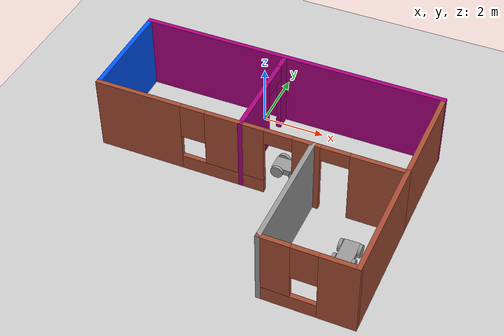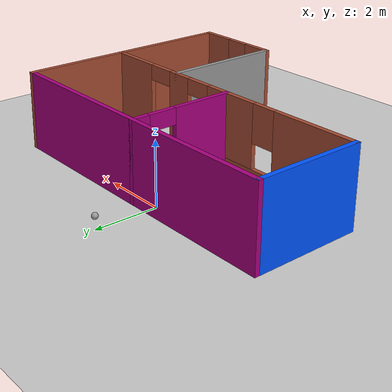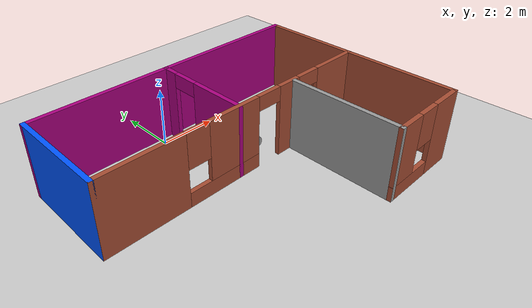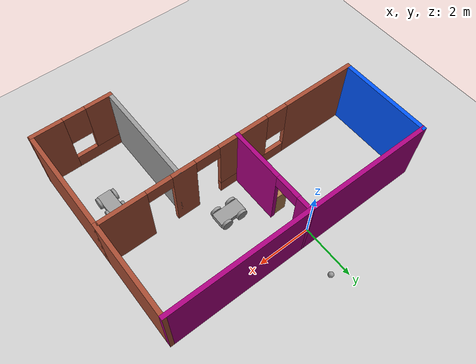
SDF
<sdf version="1.6">
 <world name="default">
  <plugin name="welcome" filename="libwelcome.so"/>
  <light name="sun" type="directional">
   <pose>0 0 10 0 -0 0</pose>
   <diffuse>0.8 0.8 0.8 1</diffuse>
   <specular>0.2 0.2 0.2 1</specular>
   <attenuation>
    <range>1000</range>
    <constant>0.9</constant>
    <linear>0.01</linear>
    <quadratic>0.001</quadratic>
   </attenuation>
   <direction>-0.5 0.1 -0.9</direction>
  </light>
  <model name="ground_plane">
   <static>1</static>
   <link name="link">
    <collision name="collision">
     <geometry><plane><normal>0 0 1</normal><size>100 100</size></plane></geometry>
     <surface><friction><ode><mu>100</mu><mu2>50</mu2></ode></friction></surface>
    </collision>
    <visual name="visual">
     <cast_shadows>0</cast_shadows>
     <geometry><plane><normal>0 0 1</normal><size>100 100</size></plane></geometry>
     <material>
      <script><uri>file://media/materials/scripts/gazebo.material</uri><name>Gazebo/Grey</name></script>
     </material>
    </visual>
   </link>
  </model>
  <gravity>0 0 -9.8</gravity>
  <magnetic_field>6e-06 2.3e-05 -4.2e-05</magnetic_field>
  <atmosphere type="adiabatic"/>
  <physics name="default_physics" default="0" type="ode">
   <max_step_size>0.001</max_step_size>
   <real_time_factor>1</real_time_factor>
   <real_time_update_rate>1000</real_time_update_rate>
  </physics>
  <scene><ambient>0.4 0.4 0.4 1</ambient><background>0.7 0.7 0.7 1</background><shadows>1</shadows></scene>
  <spherical_coordinates>
   <surface_model>EARTH_WGS84</surface_model>
   <latitude_deg>0</latitude_deg>
   <longitude_deg>0</longitude_deg>
   <elevation>0</elevation>
   <heading_deg>0</heading_deg>
  </spherical_coordinates>
  <model name="prj1_robo">
   <link name="link_0">
    <pose>0 0 1e-06 0 -0 0</pose>
    <inertial>
     <mass>1</mass>
     <inertia>
      <ixx>0.166667</ixx>
      <ixy>0</ixy>
      <ixz>0</ixz>
      <iyy>0.166667</iyy>
      <iyz>0</iyz>
      <izz>0.166667</izz>
     </inertia>
    </inertial>
    <visual name="visual">
     <geometry><box><size>1 0.5 0.2</size></box></geometry>
     <material>
      <lighting>1</lighting>
      <script><uri>file://media/materials/scripts/gazebo.material</uri><name>Gazebo/Grey</name></script>
      <shader type="pixel"><normal_map>__default__</normal_map></shader>
      <ambient>0.3 0.3 0.3 1</ambient>
      <diffuse>0.7 0.7 0.7 1</diffuse>
      <specular>0.01 0.01 0.01 1</specular>
      <emissive>0 0 0 1</emissive>
     </material>
    </visual>
    <collision name="collision">
     <geometry><box><size>1 0.5 0.2</size></box></geometry>
     <surface>
      <friction>
       <ode><mu>1</mu><mu2>1</mu2><fdir1>0 0 0</fdir1><slip1>0</slip1><slip2>0</slip2></ode>
       <torsional>
        <coefficient>1</coefficient>
        <patch_radius>0</patch_radius>
        <surface_radius>0</surface_radius>
        <use_patch_radius>1</use_patch_radius>
        <ode><slip>0</slip></ode>
       </torsional>
      </friction>
      <bounce><restitution_coefficient>0</restitution_coefficient><threshold>1e+06</threshold></bounce>
      <contact>
       <collide_without_contact>0</collide_without_contact>
       <collide_without_contact_bitmask>1</collide_without_contact_bitmask>
       <collide_bitmask>1</collide_bitmask>
       <ode>
        <soft_cfm>0</soft_cfm>
        <soft_erp>0.2</soft_erp>
        <kp>1e+13</kp>
        <kd>1</kd>
        <max_vel>0.01</max_vel>
        <min_depth>0</min_depth>
       </ode>
       <bullet>
        <split_impulse>1</split_impulse>
        <split_impulse_penetration_threshold>-0.01</split_impulse_penetration_threshold>
        <soft_cfm>0</soft_cfm>
        <soft_erp>0.2</soft_erp>
        <kp>1e+13</kp>
        <kd>1</kd>
       </bullet>
      </contact>
     </surface>
    </collision>
   </link>
   <link name="link_1">
    <pose>0.3 -0.300019 -4e-06 1.5707 -0 0</pose>
    <inertial>
     <mass>13.009</mass>
     <inertia><ixx>1.96472</ixx><ixy>0</ixy><ixz>0</ixz><iyy>1.96472</iyy><iyz>0</iyz><izz>0.26018</izz></inertia>
    </inertial>
    <visual name="visual">
     <geometry><cylinder><radius>0.2</radius><length>0.1</length></cylinder></geometry>
     <material>
      <lighting>1</lighting>
      <script><uri>file://media/materials/scripts/gazebo.material</uri><name>Gazebo/Grey</name></script>
      <shader type="pixel"><normal_map>__default__</normal_map></shader>
      <ambient>0.3 0.3 0.3 1</ambient>
      <diffuse>0.7 0.7 0.7 1</diffuse>
      <specular>0.01 0.01 0.01 1</specular>
      <emissive>0 0 0 1</emissive>
     </material>
    </visual>
    <collision name="collision">
     <geometry><cylinder><radius>0.2</radius><length>0.1</length></cylinder></geometry>
     <surface>
      <friction>
       <ode><mu>1</mu><mu2>1</mu2><fdir1>0 0 0</fdir1><slip1>0</slip1><slip2>0</slip2></ode>
       <torsional>
        <coefficient>1</coefficient>
        <patch_radius>0</patch_radius>
        <surface_radius>0</surface_radius>
        <use_patch_radius>1</use_patch_radius>
        <ode><slip>0</slip></ode>
       </torsional>
      </friction>
      <bounce><restitution_coefficient>0</restitution_coefficient><threshold>1e+06</threshold></bounce>
      <contact>
       <collide_without_contact>0</collide_without_contact>
       <collide_without_contact_bitmask>1</collide_without_contact_bitmask>
       <collide_bitmask>1</collide_bitmask>
       <ode>
        <soft_cfm>0</soft_cfm>
        <soft_erp>0.2</soft_erp>
        <kp>1e+13</kp>
        <kd>1</kd>
        <max_vel>0.01</max_vel>
        <min_depth>0</min_depth>
       </ode>
       <bullet>
        <split_impulse>1</split_impulse>
        <split_impulse_penetration_threshold>-0.01</split_impulse_penetration_threshold>
        <soft_cfm>0</soft_cfm>
        <soft_erp>0.2</soft_erp>
        <kp>1e+13</kp>
        <kd>1</kd>
       </bullet>
      </contact>
     </surface>
    </collision>
   </link>
   <link name="link_1_clone">
    <pose>-0.3 -0.300019 1e-06 1.5707 -0 0</pose>
    <inertial>
     <mass>13.009</mass>
     <inertia><ixx>1.96472</ixx><ixy>0</ixy><ixz>0</ixz><iyy>1.96472</iyy><iyz>0</iyz><izz>0.26018</izz></inertia>
    </inertial>
    <visual name="visual">
     <geometry><cylinder><radius>0.2</radius><length>0.1</length></cylinder></geometry>
     <material>
      <lighting>1</lighting>
      <script><uri>file://media/materials/scripts/gazebo.material</uri><name>Gazebo/Grey</name></script>
      <shader type="pixel"><normal_map>__default__</normal_map></shader>
      <ambient>0.3 0.3 0.3 1</ambient>
      <diffuse>0.7 0.7 0.7 1</diffuse>
      <specular>0.01 0.01 0.01 1</specular>
      <emissive>0 0 0 1</emissive>
     </material>
    </visual>
    <collision name="collision">
     <geometry><cylinder><radius>0.2</radius><length>0.1</length></cylinder></geometry>
     <surface>
      <friction>
       <ode><mu>1</mu><mu2>1</mu2><fdir1>0 0 0</fdir1><slip1>0</slip1><slip2>0</slip2></ode>
       <torsional>
        <coefficient>1</coefficient>
        <patch_radius>0</patch_radius>
        <surface_radius>0</surface_radius>
        <use_patch_radius>1</use_patch_radius>
        <ode><slip>0</slip></ode>
       </torsional>
      </friction>
      <bounce><restitution_coefficient>0</restitution_coefficient><threshold>1e+06</threshold></bounce>
      <contact>
       <collide_without_contact>0</collide_without_contact>
       <collide_without_contact_bitmask>1</collide_without_contact_bitmask>
       <collide_bitmask>1</collide_bitmask>
       <ode>
        <soft_cfm>0</soft_cfm>
        <soft_erp>0.2</soft_erp>
        <kp>1e+13</kp>
        <kd>1</kd>
        <max_vel>0.01</max_vel>
        <min_depth>0</min_depth>
       </ode>
       <bullet>
        <split_impulse>1</split_impulse>
        <split_impulse_penetration_threshold>-0.01</split_impulse_penetration_threshold>
        <soft_cfm>0</soft_cfm>
        <soft_erp>0.2</soft_erp>
        <kp>1e+13</kp>
        <kd>1</kd>
       </bullet>
      </contact>
     </surface>
    </collision>
   </link>
   <link name="link_1_clone_0">
    <pose>-0.3 0.300019 1e-06 1.5707 -0 0</pose>
    <inertial>
     <mass>13.009</mass>
     <inertia><ixx>1.96472</ixx><ixy>0</ixy><ixz>0</ixz><iyy>1.96472</iyy><iyz>0</iyz><izz>0.26018</izz></inertia>
    </inertial>
    <visual name="visual">
     <geometry><cylinder><radius>0.2</radius><length>0.1</length></cylinder></geometry>
     <material>
      <lighting>1</lighting>
      <script><uri>file://media/materials/scripts/gazebo.material</uri><name>Gazebo/Grey</name></script>
      <shader type="pixel"><normal_map>__default__</normal_map></shader>
      <ambient>0.3 0.3 0.3 1</ambient>
      <diffuse>0.7 0.7 0.7 1</diffuse>
      <specular>0.01 0.01 0.01 1</specular>
      <emissive>0 0 0 1</emissive>
     </material>
    </visual>
    <collision name="collision">
     <geometry><cylinder><radius>0.2</radius><length>0.1</length></cylinder></geometry>
     <surface>
      <friction>
       <ode><mu>1</mu><mu2>1</mu2><fdir1>0 0 0</fdir1><slip1>0</slip1><slip2>0</slip2></ode>
       <torsional>
        <coefficient>1</coefficient>
        <patch_radius>0</patch_radius>
        <surface_radius>0</surface_radius>
        <use_patch_radius>1</use_patch_radius>
        <ode><slip>0</slip></ode>
       </torsional>
      </friction>
      <bounce><restitution_coefficient>0</restitution_coefficient><threshold>1e+06</threshold></bounce>
      <contact>
       <collide_without_contact>0</collide_without_contact>
       <collide_without_contact_bitmask>1</collide_without_contact_bitmask>
       <collide_bitmask>1</collide_bitmask>
       <ode>
        <soft_cfm>0</soft_cfm>
        <soft_erp>0.2</soft_erp>
        <kp>1e+13</kp>
        <kd>1</kd>
        <max_vel>0.01</max_vel>
        <min_depth>0</min_depth>
       </ode>
       <bullet>
        <split_impulse>1</split_impulse>
        <split_impulse_penetration_threshold>-0.01</split_impulse_penetration_threshold>
        <soft_cfm>0</soft_cfm>
        <soft_erp>0.2</soft_erp>
        <kp>1e+13</kp>
        <kd>1</kd>
       </bullet>
      </contact>
     </surface>
    </collision>
   </link>
   <link name="link_1_clone_1">
    <pose>0.3 0.300019 1e-06 1.5707 -0 0</pose>
    <inertial>
     <mass>13.009</mass>
     <inertia><ixx>1.96472</ixx><ixy>0</ixy><ixz>0</ixz><iyy>1.96472</iyy><iyz>0</iyz><izz>0.26018</izz></inertia>
    </inertial>
    <visual name="visual">
     <geometry><cylinder><radius>0.2</radius><length>0.1</length></cylinder></geometry>
     <material>
      <lighting>1</lighting>
      <script><uri>file://media/materials/scripts/gazebo.material</uri><name>Gazebo/Grey</name></script>
      <shader type="pixel"><normal_map>__default__</normal_map></shader>
      <ambient>0.3 0.3 0.3 1</ambient>
      <diffuse>0.7 0.7 0.7 1</diffuse>
      <specular>0.01 0.01 0.01 1</specular>
      <emissive>0 0 0 1</emissive>
     </material>
    </visual>
    <collision name="collision">
     <geometry><cylinder><radius>0.2</radius><length>0.1</length></cylinder></geometry>
     <surface>
      <friction>
       <ode><mu>1</mu><mu2>1</mu2><fdir1>0 0 0</fdir1><slip1>0</slip1><slip2>0</slip2></ode>
       <torsional>
        <coefficient>1</coefficient>
        <patch_radius>0</patch_radius>
        <surface_radius>0</surface_radius>
        <use_patch_radius>1</use_patch_radius>
        <ode><slip>0</slip></ode>
       </torsional>
      </friction>
      <bounce><restitution_coefficient>0</restitution_coefficient><threshold>1e+06</threshold></bounce>
      <contact>
       <collide_without_contact>0</collide_without_contact>
       <collide_without_contact_bitmask>1</collide_without_contact_bitmask>
       <collide_bitmask>1</collide_bitmask>
       <ode>
        <soft_cfm>0</soft_cfm>
        <soft_erp>0.2</soft_erp>
        <kp>1e+13</kp>
        <kd>1</kd>
        <max_vel>0.01</max_vel>
        <min_depth>0</min_depth>
       </ode>
       <bullet>
        <split_impulse>1</split_impulse>
        <split_impulse_penetration_threshold>-0.01</split_impulse_penetration_threshold>
        <soft_cfm>0</soft_cfm>
        <soft_erp>0.2</soft_erp>
        <kp>1e+13</kp>
        <kd>1</kd>
       </bullet>
      </contact>
     </surface>
    </collision>
   </link>
   <joint name="link_0_JOINT_0" type="revolute">
    <parent>link_0</parent>
    <child>link_1</child>
    <axis>
     <xyz>0 1 0</xyz>
     <use_parent_model_frame>0</use_parent_model_frame>
     <limit>
      <lower>-1.79769e+308</lower>
      <upper>1.79769e+308</upper>
      <effort>-1</effort>
      <velocity>-1</velocity>
     </limit>
     <dynamics>
      <spring_reference>0</spring_reference>
      <spring_stiffness>0</spring_stiffness>
      <damping>0</damping>
     </dynamics>
    </axis>
    <physics>
     <ode><limit><cfm>0</cfm><erp>0.2</erp></limit><suspension><cfm>0</cfm><erp>0.2</erp></suspension></ode>
    </physics>
   </joint>
   <joint name="link_0_JOINT_1" type="revolute">
    <parent>link_0</parent>
    <child>link_1_clone_1</child>
    <axis>
     <xyz>0 0 1</xyz>
     <use_parent_model_frame>0</use_parent_model_frame>
     <limit>
      <lower>-1.79769e+308</lower>
      <upper>1.79769e+308</upper>
      <effort>-1</effort>
      <velocity>-1</velocity>
     </limit>
     <dynamics>
      <spring_reference>0</spring_reference>
      <spring_stiffness>0</spring_stiffness>
      <damping>0</damping>
     </dynamics>
    </axis>
    <physics>
     <ode><limit><cfm>0</cfm><erp>0.2</erp></limit><suspension><cfm>0</cfm><erp>0.2</erp></suspension></ode>
    </physics>
   </joint>
   <joint name="link_0_JOINT_2" type="revolute">
    <parent>link_0</parent>
    <child>link_1_clone</child>
    <axis>
     <xyz>0 0 1</xyz>
     <use_parent_model_frame>0</use_parent_model_frame>
     <limit>
      <lower>-1.79769e+308</lower>
      <upper>1.79769e+308</upper>
      <effort>-1</effort>
      <velocity>-1</velocity>
     </limit>
     <dynamics>
      <spring_reference>0</spring_reference>
      <spring_stiffness>0</spring_stiffness>
      <damping>0</damping>
     </dynamics>
    </axis>
    <physics>
     <ode><limit><cfm>0</cfm><erp>0.2</erp></limit><suspension><cfm>0</cfm><erp>0.2</erp></suspension></ode>
    </physics>
   </joint>
   <joint name="link_0_JOINT_3" type="revolute">
    <parent>link_0</parent>
    <child>link_1_clone_0</child>
    <axis>
     <xyz>0 0 1</xyz>
     <use_parent_model_frame>0</use_parent_model_frame>
     <limit>
      <lower>-1.79769e+308</lower>
      <upper>1.79769e+308</upper>
      <effort>-1</effort>
      <velocity>-1</velocity>
     </limit>
     <dynamics>
      <spring_reference>0</spring_reference>
      <spring_stiffness>0</spring_stiffness>
      <damping>0</damping>
     </dynamics>
    </axis>
    <physics>
     <ode><limit><cfm>0</cfm><erp>0.2</erp></limit><suspension><cfm>0</cfm><erp>0.2</erp></suspension></ode>
    </physics>
   </joint>
   <static>0</static>
   <pose>1.70772 -1.99264 0.2 0 -1e-05 0.002406</pose>
  </model>
  <model name="prj1_building">
   <pose>0.75687 -3.26578 0 0 -0 0</pose>
   <link name="Wall_33">
    <collision name="Wall_33_Collision">
     <geometry><box><size>3.5 0.15 2.5</size></box></geometry>
     <pose>0 0 1.25 0 -0 0</pose>
    </collision>
    <visual name="Wall_33_Visual">
     <pose>0 0 1.25 0 -0 0</pose>
     <geometry><box><size>3.5 0.15 2.5</size></box></geometry>
     <material>
      <script><uri>file://media/materials/scripts/gazebo.material</uri><name>Gazebo/Grey</name></script>
      <ambient>0 0.333333 1 1</ambient>
     </material>
     <meta><layer>0</layer></meta>
    </visual>
    <pose>-4.925 1.925 0 0 0 -1.5708</pose>
   </link>
   <link name="Wall_34">
    <pose>0 0.25 0 0 -0 0</pose>
    <visual name="Wall_34_Visual_0">
     <pose>-3.57883 0 1.25 0 -0 0</pose>
     <geometry><box><size>2.84234 0.15 2.5</size></box></geometry>
     <material>
      <script><uri>file://media/materials/scripts/gazebo.material</uri><name>Gazebo/Bricks</name></script>
      <ambient>1 1 1 1</ambient>
     </material>
     <meta><layer>0</layer></meta>
    </visual>
    <collision name="Wall_34_Collision_0">
     <geometry><box><size>2.84234 0.15 2.5</size></box></geometry>
     <pose>-3.57883 0 1.25 0 -0 0</pose>
    </collision>
    <visual name="Wall_34_Visual_1">
     <pose>1.88711 0 1.25 0 -0 0</pose>
     <geometry><box><size>0.866598 0.15 2.5</size></box></geometry>
     <material>
      <script><uri>file://media/materials/scripts/gazebo.material</uri><name>Gazebo/Bricks</name></script>
      <ambient>1 1 1 1</ambient>
     </material>
     <meta><layer>0</layer></meta>
    </visual>
    <collision name="Wall_34_Collision_1">
     <geometry><box><size>0.866598 0.15 2.5</size></box></geometry>
     <pose>1.88711 0 1.25 0 -0 0</pose>
    </collision>
    <visual name="Wall_34_Visual_2">
     <pose>4.1102 0 1.25 0 -0 0</pose>
     <geometry><box><size>1.7796 0.15 2.5</size></box></geometry>
     <material>
      <script><uri>file://media/materials/scripts/gazebo.material</uri><name>Gazebo/Bricks</name></script>
      <ambient>1 1 1 1</ambient>
     </material>
     <meta><layer>0</layer></meta>
    </visual>
    <collision name="Wall_34_Collision_2">
     <geometry><box><size>1.7796 0.15 2.5</size></box></geometry>
     <pose>4.1102 0 1.25 0 -0 0</pose>
    </collision>
    <visual name="Wall_34_Visual_3">
     <pose>-0.801928 0 0.25 0 -0 0</pose>
     <geometry><box><size>2.71147 0.15 0.5</size></box></geometry>
     <material>
      <script><uri>file://media/materials/scripts/gazebo.material</uri><name>Gazebo/Bricks</name></script>
      <ambient>1 1 1 1</ambient>
     </material>
     <meta><layer>0</layer></meta>
    </visual>
    <collision name="Wall_34_Collision_3">
     <geometry><box><size>2.71147 0.15 0.5</size></box></geometry>
     <pose>-0.801928 0 0.25 0 -0 0</pose>
    </collision>
    <visual name="Wall_34_Visual_4">
     <pose>-0.401928 0 1.5 0 -0 0</pose>
     <geometry><box><size>1.91147 0.15 2</size></box></geometry>
     <material>
      <script><uri>file://media/materials/scripts/gazebo.material</uri><name>Gazebo/Bricks</name></script>
      <ambient>1 1 1 1</ambient>
     </material>
     <meta><layer>0</layer></meta>
    </visual>
    <collision name="Wall_34_Collision_4">
     <geometry><box><size>1.91147 0.15 2</size></box></geometry>
     <pose>-0.401928 0 1.5 0 -0 0</pose>
    </collision>
    <visual name="Wall_34_Visual_5">
     <pose>-1.75766 0 1.9 0 -0 0</pose>
     <geometry><box><size>0.8 0.15 1.2</size></box></geometry>
     <material>
      <script><uri>file://media/materials/scripts/gazebo.material</uri><name>Gazebo/Bricks</name></script>
      <ambient>1 1 1 1</ambient>
     </material>
     <meta><layer>0</layer></meta>
    </visual>
    <collision name="Wall_34_Collision_5">
     <geometry><box><size>0.8 0.15 1.2</size></box></geometry>
     <pose>-1.75766 0 1.9 0 -0 0</pose>
    </collision>
    <visual name="Wall_34_Visual_6">
     <pose>2.7704 0 2.25 0 -0 0</pose>
     <geometry><box><size>0.9 0.15 0.5</size></box></geometry>
     <material>
      <script><uri>file://media/materials/scripts/gazebo.material</uri><name>Gazebo/Bricks</name></script>
      <ambient>1 1 1 1</ambient>
     </material>
     <meta><layer>0</layer></meta>
    </visual>
    <collision name="Wall_34_Collision_6">
     <geometry><box><size>0.9 0.15 0.5</size></box></geometry>
     <pose>2.7704 0 2.25 0 -0 0</pose>
    </collision>
    <visual name="Wall_34_Visual_7">
     <pose>1.00381 0 2.25 0 -0 0</pose>
     <geometry><box><size>0.9 0.15 0.5</size></box></geometry>
     <material>
      <script><uri>file://media/materials/scripts/gazebo.material</uri><name>Gazebo/Bricks</name></script>
      <ambient>1 1 1 1</ambient>
     </material>
     <meta><layer>0</layer></meta>
    </visual>
    <collision name="Wall_34_Collision_7">
     <geometry><box><size>0.9 0.15 0.5</size></box></geometry>
     <pose>1.00381 0 2.25 0 -0 0</pose>
    </collision>
   </link>
   <link name="Wall_35">
    <collision name="Wall_35_Collision">
     <geometry><box><size>3.5 0.15 2.5</size></box></geometry>
     <pose>0 0 1.25 0 -0 0</pose>
    </collision>
    <visual name="Wall_35_Visual">
     <pose>0 0 1.25 0 -0 0</pose>
     <geometry><box><size>3.5 0.15 2.5</size></box></geometry>
     <material>
      <script><uri>file://media/materials/scripts/gazebo.material</uri><name>Gazebo/Bricks</name></script>
      <ambient>1 1 1 1</ambient>
     </material>
     <meta><layer>0</layer></meta>
    </visual>
    <pose>4.925 1.925 0 0 -0 1.5708</pose>
   </link>
   <link name="Wall_36">
    <collision name="Wall_36_Collision">
     <geometry><box><size>10 0.15 2.5</size></box></geometry>
     <pose>0 0 1.25 0 -0 0</pose>
    </collision>
    <visual name="Wall_36_Visual">
     <pose>0 0 1.25 0 -0 0</pose>
     <geometry><box><size>10 0.15 2.5</size></box></geometry>
     <material>
      <script><uri>file://media/materials/scripts/gazebo.material</uri><name>Gazebo/Grey</name></script>
      <ambient>0.666667 0 0.498039 1</ambient>
     </material>
     <meta><layer>0</layer></meta>
    </visual>
    <pose>0 3.6 0 0 -0 3.14159</pose>
   </link>
   <link name="Wall_38">
    <pose>-0.198311 1.925 0 0 0 -1.5708</pose>
    <visual name="Wall_38_Visual_0">
     <pose>-1.44985 0 1.25 0 -0 0</pose>
     <geometry><box><size>0.600302 0.15 2.5</size></box></geometry>
     <material>
      <script><uri>file://media/materials/scripts/gazebo.material</uri><name>Gazebo/Grey</name></script>
      <ambient>0.666667 0 0.498039 1</ambient>
     </material>
     <meta><layer>0</layer></meta>
    </visual>
    <collision name="Wall_38_Collision_0">
     <geometry><box><size>0.600302 0.15 2.5</size></box></geometry>
     <pose>-1.44985 0 1.25 0 -0 0</pose>
    </collision>
    <visual name="Wall_38_Visual_1">
     <pose>0.750151 0 1.25 0 -0 0</pose>
     <geometry><box><size>1.9997 0.15 2.5</size></box></geometry>
     <material>
      <script><uri>file://media/materials/scripts/gazebo.material</uri><name>Gazebo/Grey</name></script>
      <ambient>0.666667 0 0.498039 1</ambient>
     </material>
     <meta><layer>0</layer></meta>
    </visual>
    <collision name="Wall_38_Collision_1">
     <geometry><box><size>1.9997 0.15 2.5</size></box></geometry>
     <pose>0.750151 0 1.25 0 -0 0</pose>
    </collision>
    <visual name="Wall_38_Visual_2">
     <pose>-0.699698 0 2.25 0 -0 0</pose>
     <geometry><box><size>0.9 0.15 0.5</size></box></geometry>
     <material>
      <script><uri>file://media/materials/scripts/gazebo.material</uri><name>Gazebo/Grey</name></script>
      <ambient>0.666667 0 0.498039 1</ambient>
     </material>
     <meta><layer>0</layer></meta>
    </visual>
    <collision name="Wall_38_Collision_2">
     <geometry><box><size>0.9 0.15 0.5</size></box></geometry>
     <pose>-0.699698 0 2.25 0 -0 0</pose>
    </collision>
   </link>
   <link name="Wall_44">
    <collision name="Wall_44_Collision">
     <geometry><box><size>4 0.15 2.5</size></box></geometry>
     <pose>0 0 1.25 0 -0 0</pose>
    </collision>
    <visual name="Wall_44_Visual">
     <pose>0 0 1.25 0 -0 0</pose>
     <geometry><box><size>4 0.15 2.5</size></box></geometry>
     <material>
      <script><uri>file://media/materials/scripts/gazebo.material</uri><name>Gazebo/Bricks</name></script>
      <ambient>1 1 1 1</ambient>
     </material>
     <meta><layer>0</layer></meta>
    </visual>
    <pose>4.925 -1.675 0 0 0 -1.5708</pose>
   </link>
   <link name="Wall_45">
    <pose>3.5 -3.6 0 0 -0 3.14159</pose>
    <visual name="Wall_45_Visual_0">
     <pose>-0.907945 0 1.25 0 -0 0</pose>
     <geometry><box><size>1.18411 0.15 2.5</size></box></geometry>
     <material>
      <script><uri>file://media/materials/scripts/gazebo.material</uri><name>Gazebo/Bricks</name></script>
      <ambient>1 1 1 1</ambient>
     </material>
     <meta><layer>0</layer></meta>
    </visual>
    <collision name="Wall_45_Collision_0">
     <geometry><box><size>1.18411 0.15 2.5</size></box></geometry>
     <pose>-0.907945 0 1.25 0 -0 0</pose>
    </collision>
    <visual name="Wall_45_Visual_1">
     <pose>0.592055 0 0.25 0 -0 0</pose>
     <geometry><box><size>1.81589 0.15 0.5</size></box></geometry>
     <material>
      <script><uri>file://media/materials/scripts/gazebo.material</uri><name>Gazebo/Bricks</name></script>
      <ambient>1 1 1 1</ambient>
     </material>
     <meta><layer>0</layer></meta>
    </visual>
    <collision name="Wall_45_Collision_1">
     <geometry><box><size>1.81589 0.15 0.5</size></box></geometry>
     <pose>0.592055 0 0.25 0 -0 0</pose>
    </collision>
    <visual name="Wall_45_Visual_2">
     <pose>0.992055 0 1.5 0 -0 0</pose>
     <geometry><box><size>1.01589 0.15 2</size></box></geometry>
     <material>
      <script><uri>file://media/materials/scripts/gazebo.material</uri><name>Gazebo/Bricks</name></script>
      <ambient>1 1 1 1</ambient>
     </material>
     <meta><layer>0</layer></meta>
    </visual>
    <collision name="Wall_45_Collision_2">
     <geometry><box><size>1.01589 0.15 2</size></box></geometry>
     <pose>0.992055 0 1.5 0 -0 0</pose>
    </collision>
    <visual name="Wall_45_Visual_3">
     <pose>0.08411 0 1.9 0 -0 0</pose>
     <geometry><box><size>0.8 0.15 1.2</size></box></geometry>
     <material>
      <script><uri>file://media/materials/scripts/gazebo.material</uri><name>Gazebo/Bricks</name></script>
      <ambient>1 1 1 1</ambient>
     </material>
     <meta><layer>0</layer></meta>
    </visual>
    <collision name="Wall_45_Collision_3">
     <geometry><box><size>0.8 0.15 1.2</size></box></geometry>
     <pose>0.08411 0 1.9 0 -0 0</pose>
    </collision>
   </link>
   <link name="Wall_46">
    <collision name="Wall_46_Collision">
     <geometry><box><size>4 0.15 2.5</size></box></geometry>
     <pose>0 0 1.25 0 -0 0</pose>
    </collision>
    <visual name="Wall_46_Visual">
     <pose>0 0 1.25 0 -0 0</pose>
     <geometry><box><size>4 0.15 2.5</size></box></geometry>
     <material>
      <script><uri>file://media/materials/scripts/gazebo.material</uri><name>Gazebo/Grey</name></script>
      <ambient>1 1 1 1</ambient>
     </material>
     <meta><layer>0</layer></meta>
    </visual>
    <pose>2.075 -1.675 0 0 -0 1.5708</pose>
   </link>
   <static>1</static>
  </model>
  <model name="prj1_robo_0">
   <link name="link_0">
    <pose>0 0 1e-06 0 -0 0</pose>
    <inertial>
     <mass>1</mass>
     <inertia>
      <ixx>0.166667</ixx>
      <ixy>0</ixy>
      <ixz>0</ixz>
      <iyy>0.166667</iyy>
      <iyz>0</iyz>
      <izz>0.166667</izz>
     </inertia>
    </inertial>
    <visual name="visual">
     <geometry><box><size>1 0.5 0.2</size></box></geometry>
     <material>
      <lighting>1</lighting>
      <script><uri>file://media/materials/scripts/gazebo.material</uri><name>Gazebo/Grey</name></script>
      <shader type="pixel"><normal_map>__default__</normal_map></shader>
      <ambient>0.3 0.3 0.3 1</ambient>
      <diffuse>0.7 0.7 0.7 1</diffuse>
      <specular>0.01 0.01 0.01 1</specular>
      <emissive>0 0 0 1</emissive>
     </material>
    </visual>
    <collision name="collision">
     <geometry><box><size>1 0.5 0.2</size></box></geometry>
     <surface>
      <friction>
       <ode><mu>1</mu><mu2>1</mu2><fdir1>0 0 0</fdir1><slip1>0</slip1><slip2>0</slip2></ode>
       <torsional>
        <coefficient>1</coefficient>
        <patch_radius>0</patch_radius>
        <surface_radius>0</surface_radius>
        <use_patch_radius>1</use_patch_radius>
        <ode><slip>0</slip></ode>
       </torsional>
      </friction>
      <bounce><restitution_coefficient>0</restitution_coefficient><threshold>1e+06</threshold></bounce>
      <contact>
       <collide_without_contact>0</collide_without_contact>
       <collide_without_contact_bitmask>1</collide_without_contact_bitmask>
       <collide_bitmask>1</collide_bitmask>
       <ode>
        <soft_cfm>0</soft_cfm>
        <soft_erp>0.2</soft_erp>
        <kp>1e+13</kp>
        <kd>1</kd>
        <max_vel>0.01</max_vel>
        <min_depth>0</min_depth>
       </ode>
       <bullet>
        <split_impulse>1</split_impulse>
        <split_impulse_penetration_threshold>-0.01</split_impulse_penetration_threshold>
        <soft_cfm>0</soft_cfm>
        <soft_erp>0.2</soft_erp>
        <kp>1e+13</kp>
        <kd>1</kd>
       </bullet>
      </contact>
     </surface>
    </collision>
   </link>
   <link name="link_1">
    <pose>0.3 -0.300019 -4e-06 1.5707 -0 0</pose>
    <inertial>
     <mass>13.009</mass>
     <inertia><ixx>1.96472</ixx><ixy>0</ixy><ixz>0</ixz><iyy>1.96472</iyy><iyz>0</iyz><izz>0.26018</izz></inertia>
    </inertial>
    <visual name="visual">
     <geometry><cylinder><radius>0.2</radius><length>0.1</length></cylinder></geometry>
     <material>
      <lighting>1</lighting>
      <script><uri>file://media/materials/scripts/gazebo.material</uri><name>Gazebo/Grey</name></script>
      <shader type="pixel"><normal_map>__default__</normal_map></shader>
      <ambient>0.3 0.3 0.3 1</ambient>
      <diffuse>0.7 0.7 0.7 1</diffuse>
      <specular>0.01 0.01 0.01 1</specular>
      <emissive>0 0 0 1</emissive>
     </material>
    </visual>
    <collision name="collision">
     <geometry><cylinder><radius>0.2</radius><length>0.1</length></cylinder></geometry>
     <surface>
      <friction>
       <ode><mu>1</mu><mu2>1</mu2><fdir1>0 0 0</fdir1><slip1>0</slip1><slip2>0</slip2></ode>
       <torsional>
        <coefficient>1</coefficient>
        <patch_radius>0</patch_radius>
        <surface_radius>0</surface_radius>
        <use_patch_radius>1</use_patch_radius>
        <ode><slip>0</slip></ode>
       </torsional>
      </friction>
      <bounce><restitution_coefficient>0</restitution_coefficient><threshold>1e+06</threshold></bounce>
      <contact>
       <collide_without_contact>0</collide_without_contact>
       <collide_without_contact_bitmask>1</collide_without_contact_bitmask>
       <collide_bitmask>1</collide_bitmask>
       <ode>
        <soft_cfm>0</soft_cfm>
        <soft_erp>0.2</soft_erp>
        <kp>1e+13</kp>
        <kd>1</kd>
        <max_vel>0.01</max_vel>
        <min_depth>0</min_depth>
       </ode>
       <bullet>
        <split_impulse>1</split_impulse>
        <split_impulse_penetration_threshold>-0.01</split_impulse_penetration_threshold>
        <soft_cfm>0</soft_cfm>
        <soft_erp>0.2</soft_erp>
        <kp>1e+13</kp>
        <kd>1</kd>
       </bullet>
      </contact>
     </surface>
    </collision>
   </link>
   <link name="link_1_clone">
    <pose>-0.3 -0.300019 1e-06 1.5707 -0 0</pose>
    <inertial>
     <mass>13.009</mass>
     <inertia><ixx>1.96472</ixx><ixy>0</ixy><ixz>0</ixz><iyy>1.96472</iyy><iyz>0</iyz><izz>0.26018</izz></inertia>
    </inertial>
    <visual name="visual">
     <geometry><cylinder><radius>0.2</radius><length>0.1</length></cylinder></geometry>
     <material>
      <lighting>1</lighting>
      <script><uri>file://media/materials/scripts/gazebo.material</uri><name>Gazebo/Grey</name></script>
      <shader type="pixel"><normal_map>__default__</normal_map></shader>
      <ambient>0.3 0.3 0.3 1</ambient>
      <diffuse>0.7 0.7 0.7 1</diffuse>
      <specular>0.01 0.01 0.01 1</specular>
      <emissive>0 0 0 1</emissive>
     </material>
    </visual>
    <collision name="collision">
     <geometry><cylinder><radius>0.2</radius><length>0.1</length></cylinder></geometry>
     <surface>
      <friction>
       <ode><mu>1</mu><mu2>1</mu2><fdir1>0 0 0</fdir1><slip1>0</slip1><slip2>0</slip2></ode>
       <torsional>
        <coefficient>1</coefficient>
        <patch_radius>0</patch_radius>
        <surface_radius>0</surface_radius>
        <use_patch_radius>1</use_patch_radius>
        <ode><slip>0</slip></ode>
       </torsional>
      </friction>
      <bounce><restitution_coefficient>0</restitution_coefficient><threshold>1e+06</threshold></bounce>
      <contact>
       <collide_without_contact>0</collide_without_contact>
       <collide_without_contact_bitmask>1</collide_without_contact_bitmask>
       <collide_bitmask>1</collide_bitmask>
       <ode>
        <soft_cfm>0</soft_cfm>
        <soft_erp>0.2</soft_erp>
        <kp>1e+13</kp>
        <kd>1</kd>
        <max_vel>0.01</max_vel>
        <min_depth>0</min_depth>
       </ode>
       <bullet>
        <split_impulse>1</split_impulse>
        <split_impulse_penetration_threshold>-0.01</split_impulse_penetration_threshold>
        <soft_cfm>0</soft_cfm>
        <soft_erp>0.2</soft_erp>
        <kp>1e+13</kp>
        <kd>1</kd>
       </bullet>
      </contact>
     </surface>
    </collision>
   </link>
   <link name="link_1_clone_0">
    <pose>-0.3 0.300019 1e-06 1.5707 -0 0</pose>
    <inertial>
     <mass>13.009</mass>
     <inertia><ixx>1.96472</ixx><ixy>0</ixy><ixz>0</ixz><iyy>1.96472</iyy><iyz>0</iyz><izz>0.26018</izz></inertia>
    </inertial>
    <visual name="visual">
     <geometry><cylinder><radius>0.2</radius><length>0.1</length></cylinder></geometry>
     <material>
      <lighting>1</lighting>
      <script><uri>file://media/materials/scripts/gazebo.material</uri><name>Gazebo/Grey</name></script>
      <shader type="pixel"><normal_map>__default__</normal_map></shader>
      <ambient>0.3 0.3 0.3 1</ambient>
      <diffuse>0.7 0.7 0.7 1</diffuse>
      <specular>0.01 0.01 0.01 1</specular>
      <emissive>0 0 0 1</emissive>
     </material>
    </visual>
    <collision name="collision">
     <geometry><cylinder><radius>0.2</radius><length>0.1</length></cylinder></geometry>
     <surface>
      <friction>
       <ode><mu>1</mu><mu2>1</mu2><fdir1>0 0 0</fdir1><slip1>0</slip1><slip2>0</slip2></ode>
       <torsional>
        <coefficient>1</coefficient>
        <patch_radius>0</patch_radius>
        <surface_radius>0</surface_radius>
        <use_patch_radius>1</use_patch_radius>
        <ode><slip>0</slip></ode>
       </torsional>
      </friction>
      <bounce><restitution_coefficient>0</restitution_coefficient><threshold>1e+06</threshold></bounce>
      <contact>
       <collide_without_contact>0</collide_without_contact>
       <collide_without_contact_bitmask>1</collide_without_contact_bitmask>
       <collide_bitmask>1</collide_bitmask>
       <ode>
        <soft_cfm>0</soft_cfm>
        <soft_erp>0.2</soft_erp>
        <kp>1e+13</kp>
        <kd>1</kd>
        <max_vel>0.01</max_vel>
        <min_depth>0</min_depth>
       </ode>
       <bullet>
        <split_impulse>1</split_impulse>
        <split_impulse_penetration_threshold>-0.01</split_impulse_penetration_threshold>
        <soft_cfm>0</soft_cfm>
        <soft_erp>0.2</soft_erp>
        <kp>1e+13</kp>
        <kd>1</kd>
       </bullet>
      </contact>
     </surface>
    </collision>
   </link>
   <link name="link_1_clone_1">
    <pose>0.3 0.300019 1e-06 1.5707 -0 0</pose>
    <inertial>
     <mass>13.009</mass>
     <inertia><ixx>1.96472</ixx><ixy>0</ixy><ixz>0</ixz><iyy>1.96472</iyy><iyz>0</iyz><izz>0.26018</izz></inertia>
    </inertial>
    <visual name="visual">
     <geometry><cylinder><radius>0.2</radius><length>0.1</length></cylinder></geometry>
     <material>
      <lighting>1</lighting>
      <script><uri>file://media/materials/scripts/gazebo.material</uri><name>Gazebo/Grey</name></script>
      <shader type="pixel"><normal_map>__default__</normal_map></shader>
      <ambient>0.3 0.3 0.3 1</ambient>
      <diffuse>0.7 0.7 0.7 1</diffuse>
      <specular>0.01 0.01 0.01 1</specular>
      <emissive>0 0 0 1</emissive>
     </material>
    </visual>
    <collision name="collision">
     <geometry><cylinder><radius>0.2</radius><length>0.1</length></cylinder></geometry>
     <surface>
      <friction>
       <ode><mu>1</mu><mu2>1</mu2><fdir1>0 0 0</fdir1><slip1>0</slip1><slip2>0</slip2></ode>
       <torsional>
        <coefficient>1</coefficient>
        <patch_radius>0</patch_radius>
        <surface_radius>0</surface_radius>
        <use_patch_radius>1</use_patch_radius>
        <ode><slip>0</slip></ode>
       </torsional>
      </friction>
      <bounce><restitution_coefficient>0</restitution_coefficient><threshold>1e+06</threshold></bounce>
      <contact>
       <collide_without_contact>0</collide_without_contact>
       <collide_without_contact_bitmask>1</collide_without_contact_bitmask>
       <collide_bitmask>1</collide_bitmask>
       <ode>
        <soft_cfm>0</soft_cfm>
        <soft_erp>0.2</soft_erp>
        <kp>1e+13</kp>
        <kd>1</kd>
        <max_vel>0.01</max_vel>
        <min_depth>0</min_depth>
       </ode>
       <bullet>
        <split_impulse>1</split_impulse>
        <split_impulse_penetration_threshold>-0.01</split_impulse_penetration_threshold>
        <soft_cfm>0</soft_cfm>
        <soft_erp>0.2</soft_erp>
        <kp>1e+13</kp>
        <kd>1</kd>
       </bullet>
      </contact>
     </surface>
    </collision>
   </link>
   <joint name="link_0_JOINT_0" type="revolute">
    <parent>link_0</parent>
    <child>link_1</child>
    <axis>
     <xyz>0 1 0</xyz>
     <use_parent_model_frame>0</use_parent_model_frame>
     <limit>
      <lower>-1.79769e+308</lower>
      <upper>1.79769e+308</upper>
      <effort>-1</effort>
      <velocity>-1</velocity>
     </limit>
     <dynamics>
      <spring_reference>0</spring_reference>
      <spring_stiffness>0</spring_stiffness>
      <damping>0</damping>
     </dynamics>
    </axis>
    <physics>
     <ode><limit><cfm>0</cfm><erp>0.2</erp></limit><suspension><cfm>0</cfm><erp>0.2</erp></suspension></ode>
    </physics>
   </joint>
   <joint name="link_0_JOINT_1" type="revolute">
    <parent>link_0</parent>
    <child>link_1_clone_1</child>
    <axis>
     <xyz>0 0 1</xyz>
     <use_parent_model_frame>0</use_parent_model_frame>
     <limit>
      <lower>-1.79769e+308</lower>
      <upper>1.79769e+308</upper>
      <effort>-1</effort>
      <velocity>-1</velocity>
     </limit>
     <dynamics>
      <spring_reference>0</spring_reference>
      <spring_stiffness>0</spring_stiffness>
      <damping>0</damping>
     </dynamics>
    </axis>
    <physics>
     <ode><limit><cfm>0</cfm><erp>0.2</erp></limit><suspension><cfm>0</cfm><erp>0.2</erp></suspension></ode>
    </physics>
   </joint>
   <joint name="link_0_JOINT_2" type="revolute">
    <parent>link_0</parent>
    <child>link_1_clone</child>
    <axis>
     <xyz>0 0 1</xyz>
     <use_parent_model_frame>0</use_parent_model_frame>
     <limit>
      <lower>-1.79769e+308</lower>
      <upper>1.79769e+308</upper>
      <effort>-1</effort>
      <velocity>-1</velocity>
     </limit>
     <dynamics>
      <spring_reference>0</spring_reference>
      <spring_stiffness>0</spring_stiffness>
      <damping>0</damping>
     </dynamics>
    </axis>
    <physics>
     <ode><limit><cfm>0</cfm><erp>0.2</erp></limit><suspension><cfm>0</cfm><erp>0.2</erp></suspension></ode>
    </physics>
   </joint>
   <joint name="link_0_JOINT_3" type="revolute">
    <parent>link_0</parent>
    <child>link_1_clone_0</child>
    <axis>
     <xyz>0 0 1</xyz>
     <use_parent_model_frame>0</use_parent_model_frame>
     <limit>
      <lower>-1.79769e+308</lower>
      <upper>1.79769e+308</upper>
      <effort>-1</effort>
      <velocity>-1</velocity>
     </limit>
     <dynamics>
      <spring_reference>0</spring_reference>
      <spring_stiffness>0</spring_stiffness>
      <damping>0</damping>
     </dynamics>
    </axis>
    <physics>
     <ode><limit><cfm>0</cfm><erp>0.2</erp></limit><suspension><cfm>0</cfm><erp>0.2</erp></suspension></ode>
    </physics>
   </joint>
   <static>0</static>
   <pose>4.60253 -4.64507 0.200007 2e-06 -7e-06 1.5799</pose>
  </model>
  <model name="cabinet">
   <static>1</static>
   <link name="cabinet_bottom_plate">
    <inertial>
     <pose>0 0 -1 0 -0 0</pose>
     <inertia><ixx>2.05</ixx><ixy>0</ixy><ixz>0</ixz><iyy>2.05</iyy><iyz>0</iyz><izz>2.05</izz></inertia>
     <mass>25</mass>
    </inertial>
    <collision name="cabinet_bottom_plate_geom">
     <pose>0 0 0.01 0 -0 0</pose>
     <geometry><box><size>0.45 0.45 0.02</size></box></geometry>
    </collision>
    <visual name="cabinet_bottom_plate_geom_visual">
     <pose>0 0 0.01 0 -0 0</pose>
     <geometry><box><size>0.45 0.45 0.02</size></box></geometry>
     <material>
      <script><uri>file://media/materials/scripts/gazebo.material</uri><name>Gazebo/Wood</name></script>
     </material>
    </visual>
    <collision name="cabinet_bottom_plate_geom_cabinet_back_plate">
     <pose>0.235 0 0.51 0 -0 0</pose>
     <geometry><box><size>0.02 0.45 1.02</size></box></geometry>
    </collision>
    <visual name="cabinet_bottom_plate_geom_cabinet_back_plate_visual">
     <pose>0.235 0 0.51 0 -0 0</pose>
     <geometry><box><size>0.02 0.45 1.02</size></box></geometry>
     <material>
      <script><uri>file://media/materials/scripts/gazebo.material</uri><name>Gazebo/Wood</name></script>
     </material>
    </visual>
    <collision name="cabinet_bottom_plate_geom_cabinet_left_plate">
     <pose>0 0.235 0.51 0 -0 0</pose>
     <geometry><box><size>0.45 0.02 1.02</size></box></geometry>
    </collision>
    <visual name="cabinet_bottom_plate_geom_cabinet_left_plate_visual">
     <pose>0 0.235 0.51 0 -0 0</pose>
     <geometry><box><size>0.45 0.02 1.02</size></box></geometry>
     <material>
      <script><uri>file://media/materials/scripts/gazebo.material</uri><name>Gazebo/Wood</name></script>
     </material>
    </visual>
    <collision name="cabinet_bottom_plate_geom_cabinet_middle_plate">
     <pose>0 0 0.51 0 -0 0</pose>
     <geometry><box><size>0.45 0.45 0.02</size></box></geometry>
    </collision>
    <visual name="cabinet_bottom_plate_geom_cabinet_middle_plate_visual">
     <pose>0 0 0.51 0 -0 0</pose>
     <geometry><box><size>0.45 0.45 0.02</size></box></geometry>
     <material>
      <script><uri>file://media/materials/scripts/gazebo.material</uri><name>Gazebo/Wood</name></script>
     </material>
    </visual>
    <collision name="cabinet_bottom_plate_geom_cabinet_right_plate">
     <pose>0 -0.235 0.51 0 -0 0</pose>
     <geometry><box><size>0.45 0.02 1.02</size></box></geometry>
    </collision>
    <visual name="cabinet_bottom_plate_geom_cabinet_right_plate_visual">
     <pose>0 -0.235 0.51 0 -0 0</pose>
     <geometry><box><size>0.45 0.02 1.02</size></box></geometry>
     <material>
      <script><uri>file://media/materials/scripts/gazebo.material</uri><name>Gazebo/Wood</name></script>
     </material>
    </visual>
    <collision name="cabinet_bottom_plate_geom_cabinet_top_plate">
     <pose>0 0 1.01 0 -0 0</pose>
     <geometry><box><size>0.45 0.45 0.02</size></box></geometry>
    </collision>
    <visual name="cabinet_bottom_plate_geom_cabinet_top_plate_visual">
     <pose>0 0 1.01 0 -0 0</pose>
     <geometry><box><size>0.45 0.45 0.02</size></box></geometry>
     <material>
      <script><uri>file://media/materials/scripts/gazebo.material</uri><name>Gazebo/Wood</name></script>
     </material>
    </visual>
   </link>
   <pose>0.231049 -1.36964 0 0 -0 0</pose>
  </model>
  <model name="my_ball">
   <link name="link_0">
    <inertial>
     <mass>1</mass>
     <inertia><ixx>0.1</ixx><ixy>0</ixy><ixz>0</ixz><iyy>0.1</iyy><iyz>0</iyz><izz>0.1</izz></inertia>
    </inertial>
    <visual name="visual">
     <geometry><sphere><radius>0.1</radius></sphere></geometry>
     <material>
      <lighting>1</lighting>
      <script><uri>file://media/materials/scripts/gazebo.material</uri><name>Gazebo/Grey</name></script>
      <shader type="pixel"><normal_map>__default__</normal_map></shader>
      <ambient>1 1 1 1</ambient>
      <diffuse>1 1 1 1</diffuse>
      <specular>1 1 1 1</specular>
      <emissive>1 1 1 1</emissive>
     </material>
    </visual>
    <collision name="collision">
     <geometry><sphere><radius>0.1</radius></sphere></geometry>
     <surface>
      <friction>
       <ode><mu>1</mu><mu2>1</mu2><fdir1>0 0 0</fdir1><slip1>0</slip1><slip2>0</slip2></ode>
       <torsional>
        <coefficient>1</coefficient>
        <patch_radius>0</patch_radius>
        <surface_radius>0</surface_radius>
        <use_patch_radius>1</use_patch_radius>
        <ode><slip>0</slip></ode>
       </torsional>
      </friction>
      <bounce><restitution_coefficient>0</restitution_coefficient><threshold>1e+06</threshold></bounce>
      <contact>
       <collide_without_contact>0</collide_without_contact>
       <collide_without_contact_bitmask>1</collide_without_contact_bitmask>
       <collide_bitmask>1</collide_bitmask>
       <ode>
        <soft_cfm>0</soft_cfm>
        <soft_erp>0.2</soft_erp>
        <kp>1e+13</kp>
        <kd>1</kd>
        <max_vel>0.01</max_vel>
        <min_depth>0</min_depth>
       </ode>
       <bullet>
        <split_impulse>1</split_impulse>
        <split_impulse_penetration_threshold>-0.01</split_impulse_penetration_threshold>
        <soft_cfm>0</soft_cfm>
        <soft_erp>0.2</soft_erp>
        <kp>1e+13</kp>
        <kd>1</kd>
       </bullet>
      </contact>
     </surface>
    </collision>
   </link>
   <static>0</static>
   <pose>0.502795 1.65769 0.1 0 -0 0</pose>
  </model>
 </world>
</sdf>
